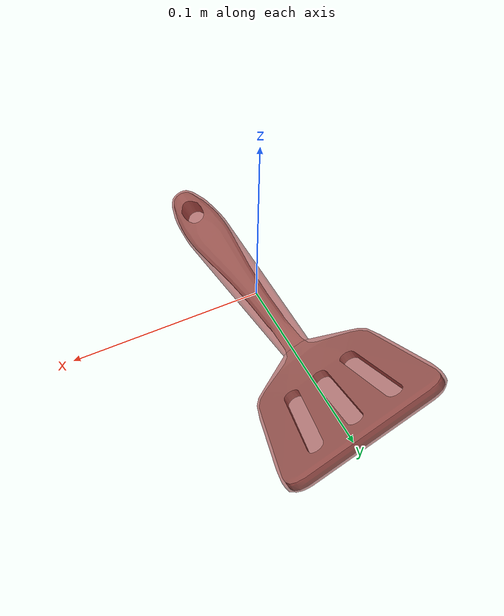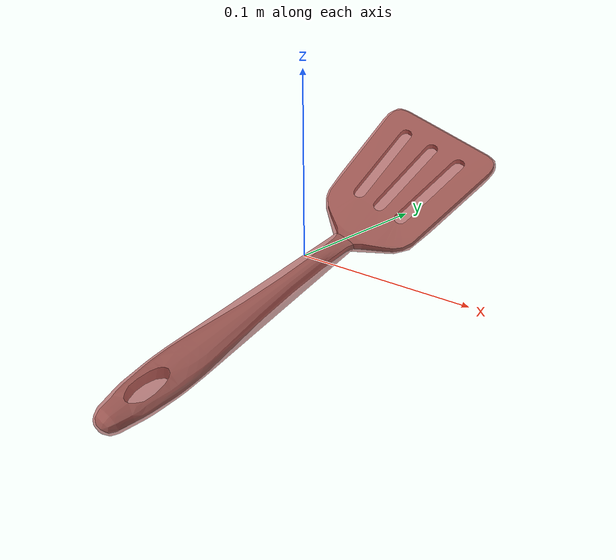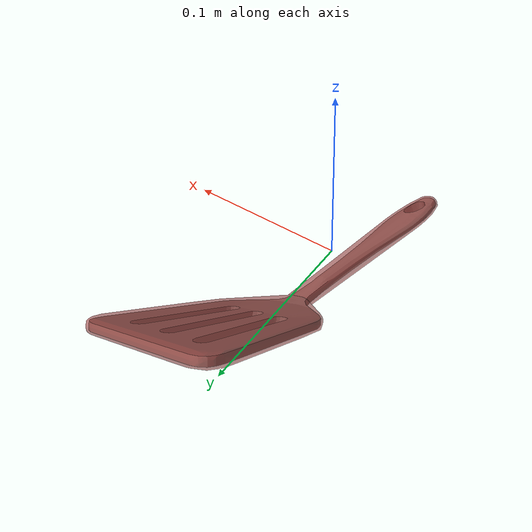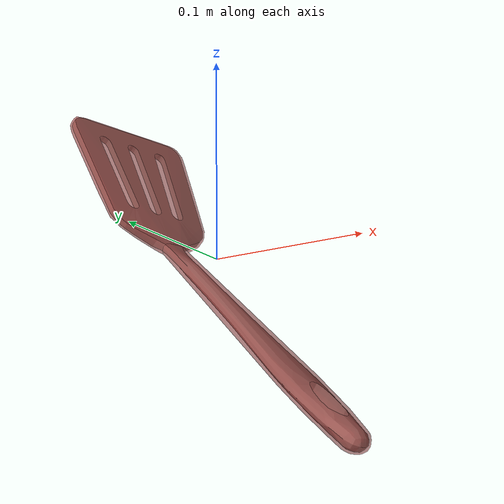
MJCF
<mujoco model="spatula_6">
  <asset>
    <mesh file="visual/model_normalized_0.obj" name="model_normalized_0_vis" scale="0.26400000000000001 0.26400000000000001 0.26400000000000001" refquat="-0.1191661400535524 0.13686550854463053 -0.7429949137826013 0.644224977572855" />
    <texture type="2d" name="image0" file="visual/image0.png" />
    <material name="Material.071" texture="image0" specular="0.5" shininess="0.25" />
    <mesh file="collision/collision_mesh_collision_0.obj" name="spatula_collision_mesh_0" scale="0.26400000000000001 0.26400000000000001 0.26400000000000001" refquat="-0.1191661400535524 0.13686550854463053 -0.7429949137826013 0.644224977572855" />
    <mesh file="collision/collision_mesh_collision_1.obj" name="spatula_collision_mesh_1" scale="0.26400000000000001 0.26400000000000001 0.26400000000000001" refquat="-0.1191661400535524 0.13686550854463053 -0.7429949137826013 0.644224977572855" />
  </asset>
  <default>
    <default class="region">
      <geom group="1" conaffinity="0" contype="0" rgba="0 1 0 0" />
    </default>
    <default class="collision">
      <geom group="0" rgba="0.5 0 0 0.5" density="1000.0" />
    </default>
  </default>
  <worldbody>
    <body>
      <body name="object">
        <geom solimp="0.998 0.998 0.001" solref="0.001 1" density="100" friction="0.95 0.3 0.1" type="mesh" mesh="model_normalized_0_vis" conaffinity="0" contype="0" group="1" material="Material.071" />
        <geom class="region" name="reg_bbox" type="box" pos="0.008668290096333478 0.00061689574307043787 0.0056121761487372768" size="0.040222164606400504 0.12816058860966265 0.057839297796494916" />
        <geom mesh="spatula_collision_mesh_0" type="mesh" class="collision" />
        <geom mesh="spatula_collision_mesh_1" type="mesh" class="collision" />
      </body>
    <site name="bottom_site" pos="0 0 -0.052227128000311762" size="0.005" rgba="0 0 0 0" /><site name="top_site" pos="0 0 0.063451481928645026" size="0.005" rgba="0 0 0 0" /><site name="horizontal_radius_site" pos="0.13576509587778363 0 0" size="0.005" rgba="0 0 0 0" /></body>
  </worldbody>
</mujoco>
